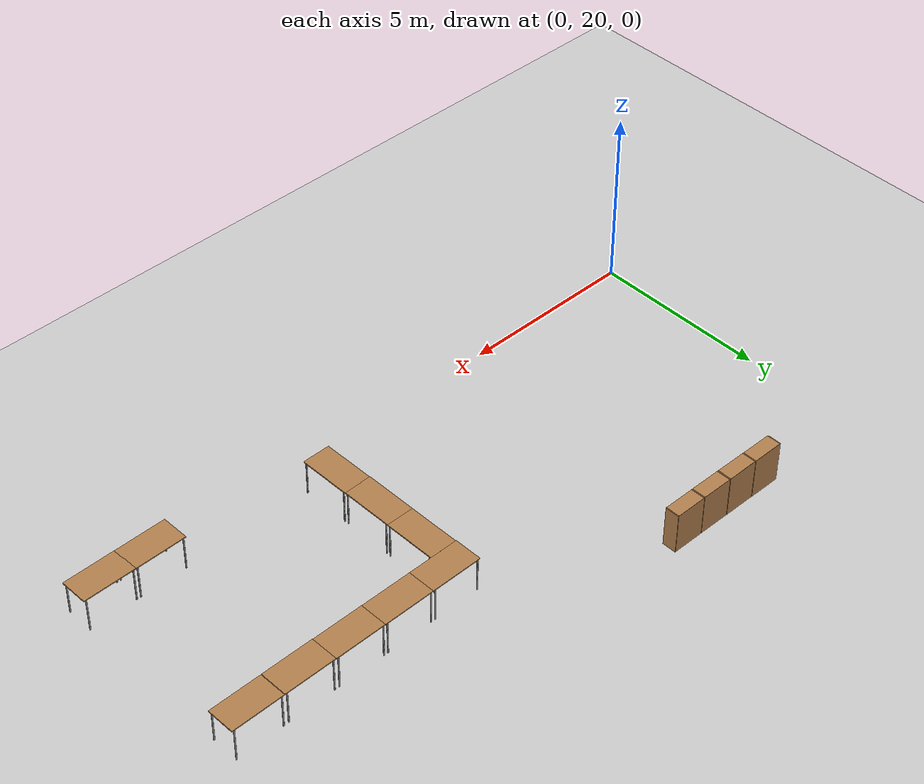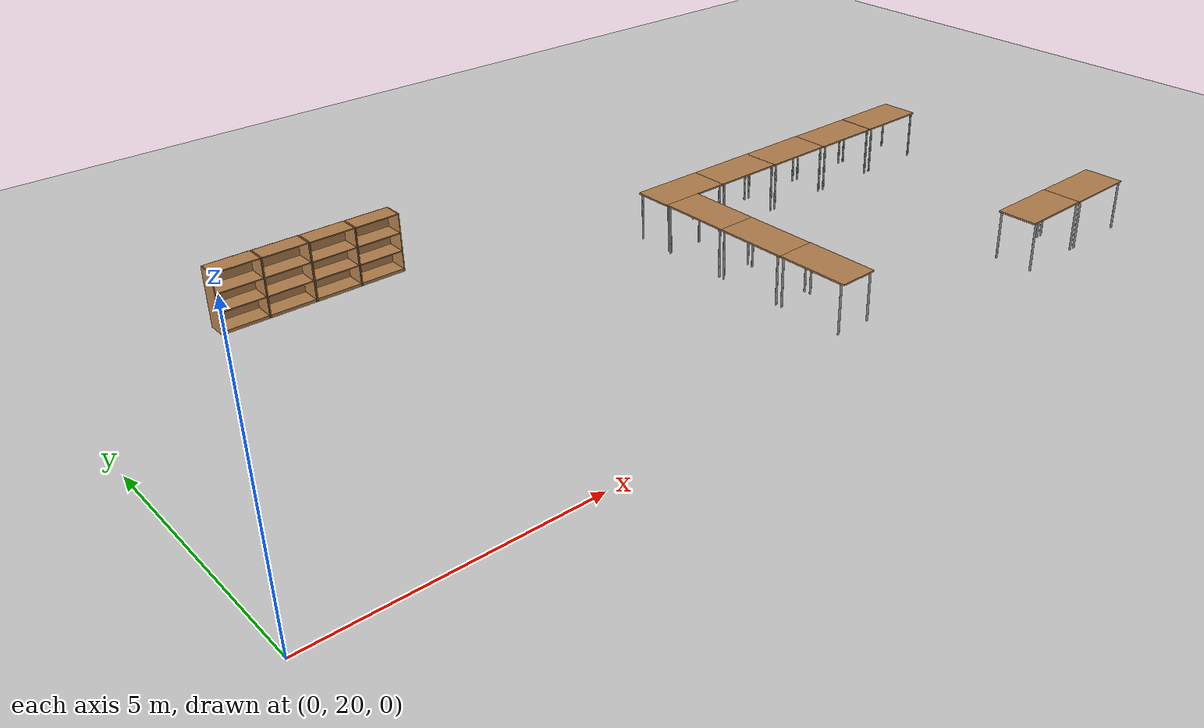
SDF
<sdf version="1.7">
 <world name="default">
  <include><uri>model://ground_plane</uri></include>
  <model name="table_clone_0_clone_0_clone_7">
   <static>1</static>
   <link name="link">
    <collision name="surface">
     <pose>0 0 1 0 -0 0</pose>
     <geometry><box><size>1.5 0.8 0.03</size></box></geometry>
     <surface><friction><ode><mu>0.6</mu><mu2>0.6</mu2></ode></friction></surface>
    </collision>
    <visual name="visual1">
     <pose>0 0 1 0 -0 0</pose>
     <geometry><box><size>1.5 0.8 0.03</size></box></geometry>
     <material>
      <script><uri>file://media/materials/scripts/gazebo.material</uri><name>Gazebo/Wood</name></script>
     </material>
    </visual>
    <collision name="front_left_leg">
     <pose>0.68 0.38 0.5 0 -0 0</pose>
     <geometry><cylinder><radius>0.02</radius><length>1</length></cylinder></geometry>
    </collision>
    <visual name="front_left_leg">
     <pose>0.68 0.38 0.5 0 -0 0</pose>
     <geometry><cylinder><radius>0.02</radius><length>1</length></cylinder></geometry>
     <material>
      <script><uri>file://media/materials/scripts/gazebo.material</uri><name>Gazebo/Grey</name></script>
     </material>
    </visual>
    <collision name="front_right_leg">
     <pose>0.68 -0.38 0.5 0 -0 0</pose>
     <geometry><cylinder><radius>0.02</radius><length>1</length></cylinder></geometry>
    </collision>
    <visual name="front_right_leg">
     <pose>0.68 -0.38 0.5 0 -0 0</pose>
     <geometry><cylinder><radius>0.02</radius><length>1</length></cylinder></geometry>
     <material>
      <script><uri>file://media/materials/scripts/gazebo.material</uri><name>Gazebo/Grey</name></script>
     </material>
    </visual>
    <collision name="back_right_leg">
     <pose>-0.68 -0.38 0.5 0 -0 0</pose>
     <geometry><cylinder><radius>0.02</radius><length>1</length></cylinder></geometry>
    </collision>
    <visual name="back_right_leg">
     <pose>-0.68 -0.38 0.5 0 -0 0</pose>
     <geometry><cylinder><radius>0.02</radius><length>1</length></cylinder></geometry>
     <material>
      <script><uri>file://media/materials/scripts/gazebo.material</uri><name>Gazebo/Grey</name></script>
     </material>
    </visual>
    <collision name="back_left_leg">
     <pose>-0.68 0.38 0.5 0 -0 0</pose>
     <geometry><cylinder><radius>0.02</radius><length>1</length></cylinder></geometry>
    </collision>
    <visual name="back_left_leg">
     <pose>-0.68 0.38 0.5 0 -0 0</pose>
     <geometry><cylinder><radius>0.02</radius><length>1</length></cylinder></geometry>
     <material>
      <script><uri>file://media/materials/scripts/gazebo.material</uri><name>Gazebo/Grey</name></script>
     </material>
    </visual>
   </link>
   <pose>11.2393 21.4927 0 0 -0 1.57868</pose>
  </model>
  <model name="table_clone_0_clone_0_clone_8">
   <static>1</static>
   <link name="link">
    <collision name="surface">
     <pose>0 0 1 0 -0 0</pose>
     <geometry><box><size>1.5 0.8 0.03</size></box></geometry>
     <surface><friction><ode><mu>0.6</mu><mu2>0.6</mu2></ode></friction></surface>
    </collision>
    <visual name="visual1">
     <pose>0 0 1 0 -0 0</pose>
     <geometry><box><size>1.5 0.8 0.03</size></box></geometry>
     <material>
      <script><uri>file://media/materials/scripts/gazebo.material</uri><name>Gazebo/Wood</name></script>
     </material>
    </visual>
    <collision name="front_left_leg">
     <pose>0.68 0.38 0.5 0 -0 0</pose>
     <geometry><cylinder><radius>0.02</radius><length>1</length></cylinder></geometry>
    </collision>
    <visual name="front_left_leg">
     <pose>0.68 0.38 0.5 0 -0 0</pose>
     <geometry><cylinder><radius>0.02</radius><length>1</length></cylinder></geometry>
     <material>
      <script><uri>file://media/materials/scripts/gazebo.material</uri><name>Gazebo/Grey</name></script>
     </material>
    </visual>
    <collision name="front_right_leg">
     <pose>0.68 -0.38 0.5 0 -0 0</pose>
     <geometry><cylinder><radius>0.02</radius><length>1</length></cylinder></geometry>
    </collision>
    <visual name="front_right_leg">
     <pose>0.68 -0.38 0.5 0 -0 0</pose>
     <geometry><cylinder><radius>0.02</radius><length>1</length></cylinder></geometry>
     <material>
      <script><uri>file://media/materials/scripts/gazebo.material</uri><name>Gazebo/Grey</name></script>
     </material>
    </visual>
    <collision name="back_right_leg">
     <pose>-0.68 -0.38 0.5 0 -0 0</pose>
     <geometry><cylinder><radius>0.02</radius><length>1</length></cylinder></geometry>
    </collision>
    <visual name="back_right_leg">
     <pose>-0.68 -0.38 0.5 0 -0 0</pose>
     <geometry><cylinder><radius>0.02</radius><length>1</length></cylinder></geometry>
     <material>
      <script><uri>file://media/materials/scripts/gazebo.material</uri><name>Gazebo/Grey</name></script>
     </material>
    </visual>
    <collision name="back_left_leg">
     <pose>-0.68 0.38 0.5 0 -0 0</pose>
     <geometry><cylinder><radius>0.02</radius><length>1</length></cylinder></geometry>
    </collision>
    <visual name="back_left_leg">
     <pose>-0.68 0.38 0.5 0 -0 0</pose>
     <geometry><cylinder><radius>0.02</radius><length>1</length></cylinder></geometry>
     <material>
      <script><uri>file://media/materials/scripts/gazebo.material</uri><name>Gazebo/Grey</name></script>
     </material>
    </visual>
   </link>
   <pose>11.2178 22.9805 0 0 -0 1.57868</pose>
  </model>
  <model name="table_clone_0_clone_0_clone_9">
   <static>1</static>
   <link name="link">
    <collision name="surface">
     <pose>0 0 1 0 -0 0</pose>
     <geometry><box><size>1.5 0.8 0.03</size></box></geometry>
     <surface><friction><ode><mu>0.6</mu><mu2>0.6</mu2></ode></friction></surface>
    </collision>
    <visual name="visual1">
     <pose>0 0 1 0 -0 0</pose>
     <geometry><box><size>1.5 0.8 0.03</size></box></geometry>
     <material>
      <script><uri>file://media/materials/scripts/gazebo.material</uri><name>Gazebo/Wood</name></script>
     </material>
    </visual>
    <collision name="front_left_leg">
     <pose>0.68 0.38 0.5 0 -0 0</pose>
     <geometry><cylinder><radius>0.02</radius><length>1</length></cylinder></geometry>
    </collision>
    <visual name="front_left_leg">
     <pose>0.68 0.38 0.5 0 -0 0</pose>
     <geometry><cylinder><radius>0.02</radius><length>1</length></cylinder></geometry>
     <material>
      <script><uri>file://media/materials/scripts/gazebo.material</uri><name>Gazebo/Grey</name></script>
     </material>
    </visual>
    <collision name="front_right_leg">
     <pose>0.68 -0.38 0.5 0 -0 0</pose>
     <geometry><cylinder><radius>0.02</radius><length>1</length></cylinder></geometry>
    </collision>
    <visual name="front_right_leg">
     <pose>0.68 -0.38 0.5 0 -0 0</pose>
     <geometry><cylinder><radius>0.02</radius><length>1</length></cylinder></geometry>
     <material>
      <script><uri>file://media/materials/scripts/gazebo.material</uri><name>Gazebo/Grey</name></script>
     </material>
    </visual>
    <collision name="back_right_leg">
     <pose>-0.68 -0.38 0.5 0 -0 0</pose>
     <geometry><cylinder><radius>0.02</radius><length>1</length></cylinder></geometry>
    </collision>
    <visual name="back_right_leg">
     <pose>-0.68 -0.38 0.5 0 -0 0</pose>
     <geometry><cylinder><radius>0.02</radius><length>1</length></cylinder></geometry>
     <material>
      <script><uri>file://media/materials/scripts/gazebo.material</uri><name>Gazebo/Grey</name></script>
     </material>
    </visual>
    <collision name="back_left_leg">
     <pose>-0.68 0.38 0.5 0 -0 0</pose>
     <geometry><cylinder><radius>0.02</radius><length>1</length></cylinder></geometry>
    </collision>
    <visual name="back_left_leg">
     <pose>-0.68 0.38 0.5 0 -0 0</pose>
     <geometry><cylinder><radius>0.02</radius><length>1</length></cylinder></geometry>
     <material>
      <script><uri>file://media/materials/scripts/gazebo.material</uri><name>Gazebo/Grey</name></script>
     </material>
    </visual>
   </link>
   <pose>11.2091 24.4647 0 0 -0 1.57868</pose>
  </model>
  <model name="table_clone_0_clone_0_clone_10">
   <static>1</static>
   <link name="link">
    <collision name="surface">
     <pose>0 0 1 0 -0 0</pose>
     <geometry><box><size>1.5 0.8 0.03</size></box></geometry>
     <surface><friction><ode><mu>0.6</mu><mu2>0.6</mu2></ode></friction></surface>
    </collision>
    <visual name="visual1">
     <pose>0 0 1 0 -0 0</pose>
     <geometry><box><size>1.5 0.8 0.03</size></box></geometry>
     <material>
      <script><uri>file://media/materials/scripts/gazebo.material</uri><name>Gazebo/Wood</name></script>
     </material>
    </visual>
    <collision name="front_left_leg">
     <pose>0.68 0.38 0.5 0 -0 0</pose>
     <geometry><cylinder><radius>0.02</radius><length>1</length></cylinder></geometry>
    </collision>
    <visual name="front_left_leg">
     <pose>0.68 0.38 0.5 0 -0 0</pose>
     <geometry><cylinder><radius>0.02</radius><length>1</length></cylinder></geometry>
     <material>
      <script><uri>file://media/materials/scripts/gazebo.material</uri><name>Gazebo/Grey</name></script>
     </material>
    </visual>
    <collision name="front_right_leg">
     <pose>0.68 -0.38 0.5 0 -0 0</pose>
     <geometry><cylinder><radius>0.02</radius><length>1</length></cylinder></geometry>
    </collision>
    <visual name="front_right_leg">
     <pose>0.68 -0.38 0.5 0 -0 0</pose>
     <geometry><cylinder><radius>0.02</radius><length>1</length></cylinder></geometry>
     <material>
      <script><uri>file://media/materials/scripts/gazebo.material</uri><name>Gazebo/Grey</name></script>
     </material>
    </visual>
    <collision name="back_right_leg">
     <pose>-0.68 -0.38 0.5 0 -0 0</pose>
     <geometry><cylinder><radius>0.02</radius><length>1</length></cylinder></geometry>
    </collision>
    <visual name="back_right_leg">
     <pose>-0.68 -0.38 0.5 0 -0 0</pose>
     <geometry><cylinder><radius>0.02</radius><length>1</length></cylinder></geometry>
     <material>
      <script><uri>file://media/materials/scripts/gazebo.material</uri><name>Gazebo/Grey</name></script>
     </material>
    </visual>
    <collision name="back_left_leg">
     <pose>-0.68 0.38 0.5 0 -0 0</pose>
     <geometry><cylinder><radius>0.02</radius><length>1</length></cylinder></geometry>
    </collision>
    <visual name="back_left_leg">
     <pose>-0.68 0.38 0.5 0 -0 0</pose>
     <geometry><cylinder><radius>0.02</radius><length>1</length></cylinder></geometry>
     <material>
      <script><uri>file://media/materials/scripts/gazebo.material</uri><name>Gazebo/Grey</name></script>
     </material>
    </visual>
   </link>
   <pose>17.5434 20.4071 0 0 -0 0.009638</pose>
  </model>
  <model name="table_clone_0_clone_0_clone_10_clone">
   <static>1</static>
   <link name="link">
    <collision name="surface">
     <pose>0 0 1 0 -0 0</pose>
     <geometry><box><size>1.5 0.8 0.03</size></box></geometry>
     <surface><friction><ode><mu>0.6</mu><mu2>0.6</mu2></ode></friction></surface>
    </collision>
    <visual name="visual1">
     <pose>0 0 1 0 -0 0</pose>
     <geometry><box><size>1.5 0.8 0.03</size></box></geometry>
     <material>
      <script><uri>file://media/materials/scripts/gazebo.material</uri><name>Gazebo/Wood</name></script>
     </material>
    </visual>
    <collision name="front_left_leg">
     <pose>0.68 0.38 0.5 0 -0 0</pose>
     <geometry><cylinder><radius>0.02</radius><length>1</length></cylinder></geometry>
    </collision>
    <visual name="front_left_leg">
     <pose>0.68 0.38 0.5 0 -0 0</pose>
     <geometry><cylinder><radius>0.02</radius><length>1</length></cylinder></geometry>
     <material>
      <script><uri>file://media/materials/scripts/gazebo.material</uri><name>Gazebo/Grey</name></script>
     </material>
    </visual>
    <collision name="front_right_leg">
     <pose>0.68 -0.38 0.5 0 -0 0</pose>
     <geometry><cylinder><radius>0.02</radius><length>1</length></cylinder></geometry>
    </collision>
    <visual name="front_right_leg">
     <pose>0.68 -0.38 0.5 0 -0 0</pose>
     <geometry><cylinder><radius>0.02</radius><length>1</length></cylinder></geometry>
     <material>
      <script><uri>file://media/materials/scripts/gazebo.material</uri><name>Gazebo/Grey</name></script>
     </material>
    </visual>
    <collision name="back_right_leg">
     <pose>-0.68 -0.38 0.5 0 -0 0</pose>
     <geometry><cylinder><radius>0.02</radius><length>1</length></cylinder></geometry>
    </collision>
    <visual name="back_right_leg">
     <pose>-0.68 -0.38 0.5 0 -0 0</pose>
     <geometry><cylinder><radius>0.02</radius><length>1</length></cylinder></geometry>
     <material>
      <script><uri>file://media/materials/scripts/gazebo.material</uri><name>Gazebo/Grey</name></script>
     </material>
    </visual>
    <collision name="back_left_leg">
     <pose>-0.68 0.38 0.5 0 -0 0</pose>
     <geometry><cylinder><radius>0.02</radius><length>1</length></cylinder></geometry>
    </collision>
    <visual name="back_left_leg">
     <pose>-0.68 0.38 0.5 0 -0 0</pose>
     <geometry><cylinder><radius>0.02</radius><length>1</length></cylinder></geometry>
     <material>
      <script><uri>file://media/materials/scripts/gazebo.material</uri><name>Gazebo/Grey</name></script>
     </material>
    </visual>
   </link>
   <pose>16.0623 20.3957 0 0 -0 0.009638</pose>
  </model>
  <model name="table_clone_0_clone_0_clone_10_clone_3">
   <static>1</static>
   <link name="link">
    <collision name="surface">
     <pose>0 0 1 0 -0 0</pose>
     <geometry><box><size>1.5 0.8 0.03</size></box></geometry>
     <surface><friction><ode><mu>0.6</mu><mu2>0.6</mu2></ode></friction></surface>
    </collision>
    <visual name="visual1">
     <pose>0 0 1 0 -0 0</pose>
     <geometry><box><size>1.5 0.8 0.03</size></box></geometry>
     <material>
      <script><uri>file://media/materials/scripts/gazebo.material</uri><name>Gazebo/Wood</name></script>
     </material>
    </visual>
    <collision name="front_left_leg">
     <pose>0.68 0.38 0.5 0 -0 0</pose>
     <geometry><cylinder><radius>0.02</radius><length>1</length></cylinder></geometry>
    </collision>
    <visual name="front_left_leg">
     <pose>0.68 0.38 0.5 0 -0 0</pose>
     <geometry><cylinder><radius>0.02</radius><length>1</length></cylinder></geometry>
     <material>
      <script><uri>file://media/materials/scripts/gazebo.material</uri><name>Gazebo/Grey</name></script>
     </material>
    </visual>
    <collision name="front_right_leg">
     <pose>0.68 -0.38 0.5 0 -0 0</pose>
     <geometry><cylinder><radius>0.02</radius><length>1</length></cylinder></geometry>
    </collision>
    <visual name="front_right_leg">
     <pose>0.68 -0.38 0.5 0 -0 0</pose>
     <geometry><cylinder><radius>0.02</radius><length>1</length></cylinder></geometry>
     <material>
      <script><uri>file://media/materials/scripts/gazebo.material</uri><name>Gazebo/Grey</name></script>
     </material>
    </visual>
    <collision name="back_right_leg">
     <pose>-0.68 -0.38 0.5 0 -0 0</pose>
     <geometry><cylinder><radius>0.02</radius><length>1</length></cylinder></geometry>
    </collision>
    <visual name="back_right_leg">
     <pose>-0.68 -0.38 0.5 0 -0 0</pose>
     <geometry><cylinder><radius>0.02</radius><length>1</length></cylinder></geometry>
     <material>
      <script><uri>file://media/materials/scripts/gazebo.material</uri><name>Gazebo/Grey</name></script>
     </material>
    </visual>
    <collision name="back_left_leg">
     <pose>-0.68 0.38 0.5 0 -0 0</pose>
     <geometry><cylinder><radius>0.02</radius><length>1</length></cylinder></geometry>
    </collision>
    <visual name="back_left_leg">
     <pose>-0.68 0.38 0.5 0 -0 0</pose>
     <geometry><cylinder><radius>0.02</radius><length>1</length></cylinder></geometry>
     <material>
      <script><uri>file://media/materials/scripts/gazebo.material</uri><name>Gazebo/Grey</name></script>
     </material>
    </visual>
   </link>
   <pose>17.5095 25.6625 0 0 -0 0.009638</pose>
  </model>
  <model name="table_clone_0_clone_0_clone_10_clone_4">
   <static>1</static>
   <link name="link">
    <collision name="surface">
     <pose>0 0 1 0 -0 0</pose>
     <geometry><box><size>1.5 0.8 0.03</size></box></geometry>
     <surface><friction><ode><mu>0.6</mu><mu2>0.6</mu2></ode></friction></surface>
    </collision>
    <visual name="visual1">
     <pose>0 0 1 0 -0 0</pose>
     <geometry><box><size>1.5 0.8 0.03</size></box></geometry>
     <material>
      <script><uri>file://media/materials/scripts/gazebo.material</uri><name>Gazebo/Wood</name></script>
     </material>
    </visual>
    <collision name="front_left_leg">
     <pose>0.68 0.38 0.5 0 -0 0</pose>
     <geometry><cylinder><radius>0.02</radius><length>1</length></cylinder></geometry>
    </collision>
    <visual name="front_left_leg">
     <pose>0.68 0.38 0.5 0 -0 0</pose>
     <geometry><cylinder><radius>0.02</radius><length>1</length></cylinder></geometry>
     <material>
      <script><uri>file://media/materials/scripts/gazebo.material</uri><name>Gazebo/Grey</name></script>
     </material>
    </visual>
    <collision name="front_right_leg">
     <pose>0.68 -0.38 0.5 0 -0 0</pose>
     <geometry><cylinder><radius>0.02</radius><length>1</length></cylinder></geometry>
    </collision>
    <visual name="front_right_leg">
     <pose>0.68 -0.38 0.5 0 -0 0</pose>
     <geometry><cylinder><radius>0.02</radius><length>1</length></cylinder></geometry>
     <material>
      <script><uri>file://media/materials/scripts/gazebo.material</uri><name>Gazebo/Grey</name></script>
     </material>
    </visual>
    <collision name="back_right_leg">
     <pose>-0.68 -0.38 0.5 0 -0 0</pose>
     <geometry><cylinder><radius>0.02</radius><length>1</length></cylinder></geometry>
    </collision>
    <visual name="back_right_leg">
     <pose>-0.68 -0.38 0.5 0 -0 0</pose>
     <geometry><cylinder><radius>0.02</radius><length>1</length></cylinder></geometry>
     <material>
      <script><uri>file://media/materials/scripts/gazebo.material</uri><name>Gazebo/Grey</name></script>
     </material>
    </visual>
    <collision name="back_left_leg">
     <pose>-0.68 0.38 0.5 0 -0 0</pose>
     <geometry><cylinder><radius>0.02</radius><length>1</length></cylinder></geometry>
    </collision>
    <visual name="back_left_leg">
     <pose>-0.68 0.38 0.5 0 -0 0</pose>
     <geometry><cylinder><radius>0.02</radius><length>1</length></cylinder></geometry>
     <material>
      <script><uri>file://media/materials/scripts/gazebo.material</uri><name>Gazebo/Grey</name></script>
     </material>
    </visual>
   </link>
   <pose>15.998 25.6463 0 0 -0 0.009638</pose>
  </model>
  <model name="table_clone_0_clone_0_clone_10_clone_5">
   <static>1</static>
   <link name="link">
    <collision name="surface">
     <pose>0 0 1 0 -0 0</pose>
     <geometry><box><size>1.5 0.8 0.03</size></box></geometry>
     <surface><friction><ode><mu>0.6</mu><mu2>0.6</mu2></ode></friction></surface>
    </collision>
    <visual name="visual1">
     <pose>0 0 1 0 -0 0</pose>
     <geometry><box><size>1.5 0.8 0.03</size></box></geometry>
     <material>
      <script><uri>file://media/materials/scripts/gazebo.material</uri><name>Gazebo/Wood</name></script>
     </material>
    </visual>
    <collision name="front_left_leg">
     <pose>0.68 0.38 0.5 0 -0 0</pose>
     <geometry><cylinder><radius>0.02</radius><length>1</length></cylinder></geometry>
    </collision>
    <visual name="front_left_leg">
     <pose>0.68 0.38 0.5 0 -0 0</pose>
     <geometry><cylinder><radius>0.02</radius><length>1</length></cylinder></geometry>
     <material>
      <script><uri>file://media/materials/scripts/gazebo.material</uri><name>Gazebo/Grey</name></script>
     </material>
    </visual>
    <collision name="front_right_leg">
     <pose>0.68 -0.38 0.5 0 -0 0</pose>
     <geometry><cylinder><radius>0.02</radius><length>1</length></cylinder></geometry>
    </collision>
    <visual name="front_right_leg">
     <pose>0.68 -0.38 0.5 0 -0 0</pose>
     <geometry><cylinder><radius>0.02</radius><length>1</length></cylinder></geometry>
     <material>
      <script><uri>file://media/materials/scripts/gazebo.material</uri><name>Gazebo/Grey</name></script>
     </material>
    </visual>
    <collision name="back_right_leg">
     <pose>-0.68 -0.38 0.5 0 -0 0</pose>
     <geometry><cylinder><radius>0.02</radius><length>1</length></cylinder></geometry>
    </collision>
    <visual name="back_right_leg">
     <pose>-0.68 -0.38 0.5 0 -0 0</pose>
     <geometry><cylinder><radius>0.02</radius><length>1</length></cylinder></geometry>
     <material>
      <script><uri>file://media/materials/scripts/gazebo.material</uri><name>Gazebo/Grey</name></script>
     </material>
    </visual>
    <collision name="back_left_leg">
     <pose>-0.68 0.38 0.5 0 -0 0</pose>
     <geometry><cylinder><radius>0.02</radius><length>1</length></cylinder></geometry>
    </collision>
    <visual name="back_left_leg">
     <pose>-0.68 0.38 0.5 0 -0 0</pose>
     <geometry><cylinder><radius>0.02</radius><length>1</length></cylinder></geometry>
     <material>
      <script><uri>file://media/materials/scripts/gazebo.material</uri><name>Gazebo/Grey</name></script>
     </material>
    </visual>
   </link>
   <pose>14.4996 25.6409 0 0 -0 0.009638</pose>
  </model>
  <model name="table_clone_0_clone_0_clone_10_clone_6">
   <static>1</static>
   <link name="link">
    <collision name="surface">
     <pose>0 0 1 0 -0 0</pose>
     <geometry><box><size>1.5 0.8 0.03</size></box></geometry>
     <surface><friction><ode><mu>0.6</mu><mu2>0.6</mu2></ode></friction></surface>
    </collision>
    <visual name="visual1">
     <pose>0 0 1 0 -0 0</pose>
     <geometry><box><size>1.5 0.8 0.03</size></box></geometry>
     <material>
      <script><uri>file://media/materials/scripts/gazebo.material</uri><name>Gazebo/Wood</name></script>
     </material>
    </visual>
    <collision name="front_left_leg">
     <pose>0.68 0.38 0.5 0 -0 0</pose>
     <geometry><cylinder><radius>0.02</radius><length>1</length></cylinder></geometry>
    </collision>
    <visual name="front_left_leg">
     <pose>0.68 0.38 0.5 0 -0 0</pose>
     <geometry><cylinder><radius>0.02</radius><length>1</length></cylinder></geometry>
     <material>
      <script><uri>file://media/materials/scripts/gazebo.material</uri><name>Gazebo/Grey</name></script>
     </material>
    </visual>
    <collision name="front_right_leg">
     <pose>0.68 -0.38 0.5 0 -0 0</pose>
     <geometry><cylinder><radius>0.02</radius><length>1</length></cylinder></geometry>
    </collision>
    <visual name="front_right_leg">
     <pose>0.68 -0.38 0.5 0 -0 0</pose>
     <geometry><cylinder><radius>0.02</radius><length>1</length></cylinder></geometry>
     <material>
      <script><uri>file://media/materials/scripts/gazebo.material</uri><name>Gazebo/Grey</name></script>
     </material>
    </visual>
    <collision name="back_right_leg">
     <pose>-0.68 -0.38 0.5 0 -0 0</pose>
     <geometry><cylinder><radius>0.02</radius><length>1</length></cylinder></geometry>
    </collision>
    <visual name="back_right_leg">
     <pose>-0.68 -0.38 0.5 0 -0 0</pose>
     <geometry><cylinder><radius>0.02</radius><length>1</length></cylinder></geometry>
     <material>
      <script><uri>file://media/materials/scripts/gazebo.material</uri><name>Gazebo/Grey</name></script>
     </material>
    </visual>
    <collision name="back_left_leg">
     <pose>-0.68 0.38 0.5 0 -0 0</pose>
     <geometry><cylinder><radius>0.02</radius><length>1</length></cylinder></geometry>
    </collision>
    <visual name="back_left_leg">
     <pose>-0.68 0.38 0.5 0 -0 0</pose>
     <geometry><cylinder><radius>0.02</radius><length>1</length></cylinder></geometry>
     <material>
      <script><uri>file://media/materials/scripts/gazebo.material</uri><name>Gazebo/Grey</name></script>
     </material>
    </visual>
   </link>
   <pose>13.0207 25.6312 0 0 -0 0.009638</pose>
  </model>
  <model name="table_clone_0_clone_0_clone_10_clone_7">
   <static>1</static>
   <link name="link">
    <collision name="surface">
     <pose>0 0 1 0 -0 0</pose>
     <geometry><box><size>1.5 0.8 0.03</size></box></geometry>
     <surface><friction><ode><mu>0.6</mu><mu2>0.6</mu2></ode></friction></surface>
    </collision>
    <visual name="visual1">
     <pose>0 0 1 0 -0 0</pose>
     <geometry><box><size>1.5 0.8 0.03</size></box></geometry>
     <material>
      <script><uri>file://media/materials/scripts/gazebo.material</uri><name>Gazebo/Wood</name></script>
     </material>
    </visual>
    <collision name="front_left_leg">
     <pose>0.68 0.38 0.5 0 -0 0</pose>
     <geometry><cylinder><radius>0.02</radius><length>1</length></cylinder></geometry>
    </collision>
    <visual name="front_left_leg">
     <pose>0.68 0.38 0.5 0 -0 0</pose>
     <geometry><cylinder><radius>0.02</radius><length>1</length></cylinder></geometry>
     <material>
      <script><uri>file://media/materials/scripts/gazebo.material</uri><name>Gazebo/Grey</name></script>
     </material>
    </visual>
    <collision name="front_right_leg">
     <pose>0.68 -0.38 0.5 0 -0 0</pose>
     <geometry><cylinder><radius>0.02</radius><length>1</length></cylinder></geometry>
    </collision>
    <visual name="front_right_leg">
     <pose>0.68 -0.38 0.5 0 -0 0</pose>
     <geometry><cylinder><radius>0.02</radius><length>1</length></cylinder></geometry>
     <material>
      <script><uri>file://media/materials/scripts/gazebo.material</uri><name>Gazebo/Grey</name></script>
     </material>
    </visual>
    <collision name="back_right_leg">
     <pose>-0.68 -0.38 0.5 0 -0 0</pose>
     <geometry><cylinder><radius>0.02</radius><length>1</length></cylinder></geometry>
    </collision>
    <visual name="back_right_leg">
     <pose>-0.68 -0.38 0.5 0 -0 0</pose>
     <geometry><cylinder><radius>0.02</radius><length>1</length></cylinder></geometry>
     <material>
      <script><uri>file://media/materials/scripts/gazebo.material</uri><name>Gazebo/Grey</name></script>
     </material>
    </visual>
    <collision name="back_left_leg">
     <pose>-0.68 0.38 0.5 0 -0 0</pose>
     <geometry><cylinder><radius>0.02</radius><length>1</length></cylinder></geometry>
    </collision>
    <visual name="back_left_leg">
     <pose>-0.68 0.38 0.5 0 -0 0</pose>
     <geometry><cylinder><radius>0.02</radius><length>1</length></cylinder></geometry>
     <material>
      <script><uri>file://media/materials/scripts/gazebo.material</uri><name>Gazebo/Grey</name></script>
     </material>
    </visual>
   </link>
   <pose>11.5338 25.6181 0 0 -0 0.009638</pose>
  </model>
  <model name="bookshelf_clone_1_clone">
   <static>1</static>
   <link name="link">
    <inertial><mass>1</mass></inertial>
    <collision name="back">
     <pose>0 0.005 0.6 0 -0 0</pose>
     <geometry><box><size>0.9 0.01 1.2</size></box></geometry>
    </collision>
    <visual name="visual1">
     <pose>0 0.005 0.6 0 -0 0</pose>
     <geometry><box><size>0.9 0.01 1.2</size></box></geometry>
     <material>
      <script><uri>file://media/materials/scripts/gazebo.material</uri><name>Gazebo/Wood</name></script>
     </material>
    </visual>
    <collision name="left_side">
     <pose>0.45 -0.195 0.6 0 -0 0</pose>
     <geometry><box><size>0.02 0.4 1.2</size></box></geometry>
    </collision>
    <visual name="visual2">
     <pose>0.45 -0.195 0.6 0 -0 0</pose>
     <geometry><box><size>0.02 0.4 1.2</size></box></geometry>
     <material>
      <script><uri>file://media/materials/scripts/gazebo.material</uri><name>Gazebo/Wood</name></script>
     </material>
    </visual>
    <collision name="right_side">
     <pose>-0.45 -0.195 0.6 0 -0 0</pose>
     <geometry><box><size>0.02 0.4 1.2</size></box></geometry>
    </collision>
    <visual name="visual3">
     <pose>-0.45 -0.195 0.6 0 -0 0</pose>
     <geometry><box><size>0.02 0.4 1.2</size></box></geometry>
     <material>
      <script><uri>file://media/materials/scripts/gazebo.material</uri><name>Gazebo/Wood</name></script>
     </material>
    </visual>
    <collision name="bottom">
     <pose>0 -0.195 0.03 0 -0 0</pose>
     <geometry><box><size>0.88 0.4 0.06</size></box></geometry>
    </collision>
    <visual name="visual4">
     <pose>0 -0.195 0.03 0 -0 0</pose>
     <geometry><box><size>0.88 0.4 0.06</size></box></geometry>
     <material>
      <script><uri>file://media/materials/scripts/gazebo.material</uri><name>Gazebo/Wood</name></script>
     </material>
    </visual>
    <collision name="top">
     <pose>0 -0.195 1.19 0 -0 0</pose>
     <geometry><box><size>0.88 0.4 0.02</size></box></geometry>
    </collision>
    <visual name="visual5">
     <pose>0 -0.195 1.19 0 -0 0</pose>
     <geometry><box><size>0.88 0.4 0.02</size></box></geometry>
     <material>
      <script><uri>file://media/materials/scripts/gazebo.material</uri><name>Gazebo/Wood</name></script>
     </material>
    </visual>
    <collision name="low_shelf">
     <pose>0 -0.195 0.43 0 -0 0</pose>
     <geometry><box><size>0.88 0.4 0.02</size></box></geometry>
    </collision>
    <visual name="visual6">
     <pose>0 -0.195 0.43 0 -0 0</pose>
     <geometry><box><size>0.88 0.4 0.02</size></box></geometry>
     <material>
      <script><uri>file://media/materials/scripts/gazebo.material</uri><name>Gazebo/Wood</name></script>
     </material>
    </visual>
    <collision name="high_shelf">
     <pose>0 -0.195 0.8 0 -0 0</pose>
     <geometry><box><size>0.88 0.4 0.02</size></box></geometry>
    </collision>
    <visual name="visual7">
     <pose>0 -0.195 0.8 0 -0 0</pose>
     <geometry><box><size>0.88 0.4 0.02</size></box></geometry>
     <material>
      <script><uri>file://media/materials/scripts/gazebo.material</uri><name>Gazebo/Wood</name></script>
     </material>
    </visual>
   </link>
   <pose>3.36103 28.3558 0 0 -0 0</pose>
  </model>
  <model name="bookshelf_clone_1_clone_0">
   <static>1</static>
   <link name="link">
    <inertial><mass>1</mass></inertial>
    <collision name="back">
     <pose>0 0.005 0.6 0 -0 0</pose>
     <geometry><box><size>0.9 0.01 1.2</size></box></geometry>
    </collision>
    <visual name="visual1">
     <pose>0 0.005 0.6 0 -0 0</pose>
     <geometry><box><size>0.9 0.01 1.2</size></box></geometry>
     <material>
      <script><uri>file://media/materials/scripts/gazebo.material</uri><name>Gazebo/Wood</name></script>
     </material>
    </visual>
    <collision name="left_side">
     <pose>0.45 -0.195 0.6 0 -0 0</pose>
     <geometry><box><size>0.02 0.4 1.2</size></box></geometry>
    </collision>
    <visual name="visual2">
     <pose>0.45 -0.195 0.6 0 -0 0</pose>
     <geometry><box><size>0.02 0.4 1.2</size></box></geometry>
     <material>
      <script><uri>file://media/materials/scripts/gazebo.material</uri><name>Gazebo/Wood</name></script>
     </material>
    </visual>
    <collision name="right_side">
     <pose>-0.45 -0.195 0.6 0 -0 0</pose>
     <geometry><box><size>0.02 0.4 1.2</size></box></geometry>
    </collision>
    <visual name="visual3">
     <pose>-0.45 -0.195 0.6 0 -0 0</pose>
     <geometry><box><size>0.02 0.4 1.2</size></box></geometry>
     <material>
      <script><uri>file://media/materials/scripts/gazebo.material</uri><name>Gazebo/Wood</name></script>
     </material>
    </visual>
    <collision name="bottom">
     <pose>0 -0.195 0.03 0 -0 0</pose>
     <geometry><box><size>0.88 0.4 0.06</size></box></geometry>
    </collision>
    <visual name="visual4">
     <pose>0 -0.195 0.03 0 -0 0</pose>
     <geometry><box><size>0.88 0.4 0.06</size></box></geometry>
     <material>
      <script><uri>file://media/materials/scripts/gazebo.material</uri><name>Gazebo/Wood</name></script>
     </material>
    </visual>
    <collision name="top">
     <pose>0 -0.195 1.19 0 -0 0</pose>
     <geometry><box><size>0.88 0.4 0.02</size></box></geometry>
    </collision>
    <visual name="visual5">
     <pose>0 -0.195 1.19 0 -0 0</pose>
     <geometry><box><size>0.88 0.4 0.02</size></box></geometry>
     <material>
      <script><uri>file://media/materials/scripts/gazebo.material</uri><name>Gazebo/Wood</name></script>
     </material>
    </visual>
    <collision name="low_shelf">
     <pose>0 -0.195 0.43 0 -0 0</pose>
     <geometry><box><size>0.88 0.4 0.02</size></box></geometry>
    </collision>
    <visual name="visual6">
     <pose>0 -0.195 0.43 0 -0 0</pose>
     <geometry><box><size>0.88 0.4 0.02</size></box></geometry>
     <material>
      <script><uri>file://media/materials/scripts/gazebo.material</uri><name>Gazebo/Wood</name></script>
     </material>
    </visual>
    <collision name="high_shelf">
     <pose>0 -0.195 0.8 0 -0 0</pose>
     <geometry><box><size>0.88 0.4 0.02</size></box></geometry>
    </collision>
    <visual name="visual7">
     <pose>0 -0.195 0.8 0 -0 0</pose>
     <geometry><box><size>0.88 0.4 0.02</size></box></geometry>
     <material>
      <script><uri>file://media/materials/scripts/gazebo.material</uri><name>Gazebo/Wood</name></script>
     </material>
    </visual>
   </link>
   <pose>4.27446 28.3514 0 0 -0 0</pose>
  </model>
  <model name="bookshelf_clone_1_clone_1">
   <static>1</static>
   <link name="link">
    <inertial><mass>1</mass></inertial>
    <collision name="back">
     <pose>0 0.005 0.6 0 -0 0</pose>
     <geometry><box><size>0.9 0.01 1.2</size></box></geometry>
    </collision>
    <visual name="visual1">
     <pose>0 0.005 0.6 0 -0 0</pose>
     <geometry><box><size>0.9 0.01 1.2</size></box></geometry>
     <material>
      <script><uri>file://media/materials/scripts/gazebo.material</uri><name>Gazebo/Wood</name></script>
     </material>
    </visual>
    <collision name="left_side">
     <pose>0.45 -0.195 0.6 0 -0 0</pose>
     <geometry><box><size>0.02 0.4 1.2</size></box></geometry>
    </collision>
    <visual name="visual2">
     <pose>0.45 -0.195 0.6 0 -0 0</pose>
     <geometry><box><size>0.02 0.4 1.2</size></box></geometry>
     <material>
      <script><uri>file://media/materials/scripts/gazebo.material</uri><name>Gazebo/Wood</name></script>
     </material>
    </visual>
    <collision name="right_side">
     <pose>-0.45 -0.195 0.6 0 -0 0</pose>
     <geometry><box><size>0.02 0.4 1.2</size></box></geometry>
    </collision>
    <visual name="visual3">
     <pose>-0.45 -0.195 0.6 0 -0 0</pose>
     <geometry><box><size>0.02 0.4 1.2</size></box></geometry>
     <material>
      <script><uri>file://media/materials/scripts/gazebo.material</uri><name>Gazebo/Wood</name></script>
     </material>
    </visual>
    <collision name="bottom">
     <pose>0 -0.195 0.03 0 -0 0</pose>
     <geometry><box><size>0.88 0.4 0.06</size></box></geometry>
    </collision>
    <visual name="visual4">
     <pose>0 -0.195 0.03 0 -0 0</pose>
     <geometry><box><size>0.88 0.4 0.06</size></box></geometry>
     <material>
      <script><uri>file://media/materials/scripts/gazebo.material</uri><name>Gazebo/Wood</name></script>
     </material>
    </visual>
    <collision name="top">
     <pose>0 -0.195 1.19 0 -0 0</pose>
     <geometry><box><size>0.88 0.4 0.02</size></box></geometry>
    </collision>
    <visual name="visual5">
     <pose>0 -0.195 1.19 0 -0 0</pose>
     <geometry><box><size>0.88 0.4 0.02</size></box></geometry>
     <material>
      <script><uri>file://media/materials/scripts/gazebo.material</uri><name>Gazebo/Wood</name></script>
     </material>
    </visual>
    <collision name="low_shelf">
     <pose>0 -0.195 0.43 0 -0 0</pose>
     <geometry><box><size>0.88 0.4 0.02</size></box></geometry>
    </collision>
    <visual name="visual6">
     <pose>0 -0.195 0.43 0 -0 0</pose>
     <geometry><box><size>0.88 0.4 0.02</size></box></geometry>
     <material>
      <script><uri>file://media/materials/scripts/gazebo.material</uri><name>Gazebo/Wood</name></script>
     </material>
    </visual>
    <collision name="high_shelf">
     <pose>0 -0.195 0.8 0 -0 0</pose>
     <geometry><box><size>0.88 0.4 0.02</size></box></geometry>
    </collision>
    <visual name="visual7">
     <pose>0 -0.195 0.8 0 -0 0</pose>
     <geometry><box><size>0.88 0.4 0.02</size></box></geometry>
     <material>
      <script><uri>file://media/materials/scripts/gazebo.material</uri><name>Gazebo/Wood</name></script>
     </material>
    </visual>
   </link>
   <pose>5.19313 28.3479 0 0 -0 0</pose>
  </model>
  <model name="bookshelf_clone_1_clone_2">
   <static>1</static>
   <link name="link">
    <inertial><mass>1</mass></inertial>
    <collision name="back">
     <pose>0 0.005 0.6 0 -0 0</pose>
     <geometry><box><size>0.9 0.01 1.2</size></box></geometry>
    </collision>
    <visual name="visual1">
     <pose>0 0.005 0.6 0 -0 0</pose>
     <geometry><box><size>0.9 0.01 1.2</size></box></geometry>
     <material>
      <script><uri>file://media/materials/scripts/gazebo.material</uri><name>Gazebo/Wood</name></script>
     </material>
    </visual>
    <collision name="left_side">
     <pose>0.45 -0.195 0.6 0 -0 0</pose>
     <geometry><box><size>0.02 0.4 1.2</size></box></geometry>
    </collision>
    <visual name="visual2">
     <pose>0.45 -0.195 0.6 0 -0 0</pose>
     <geometry><box><size>0.02 0.4 1.2</size></box></geometry>
     <material>
      <script><uri>file://media/materials/scripts/gazebo.material</uri><name>Gazebo/Wood</name></script>
     </material>
    </visual>
    <collision name="right_side">
     <pose>-0.45 -0.195 0.6 0 -0 0</pose>
     <geometry><box><size>0.02 0.4 1.2</size></box></geometry>
    </collision>
    <visual name="visual3">
     <pose>-0.45 -0.195 0.6 0 -0 0</pose>
     <geometry><box><size>0.02 0.4 1.2</size></box></geometry>
     <material>
      <script><uri>file://media/materials/scripts/gazebo.material</uri><name>Gazebo/Wood</name></script>
     </material>
    </visual>
    <collision name="bottom">
     <pose>0 -0.195 0.03 0 -0 0</pose>
     <geometry><box><size>0.88 0.4 0.06</size></box></geometry>
    </collision>
    <visual name="visual4">
     <pose>0 -0.195 0.03 0 -0 0</pose>
     <geometry><box><size>0.88 0.4 0.06</size></box></geometry>
     <material>
      <script><uri>file://media/materials/scripts/gazebo.material</uri><name>Gazebo/Wood</name></script>
     </material>
    </visual>
    <collision name="top">
     <pose>0 -0.195 1.19 0 -0 0</pose>
     <geometry><box><size>0.88 0.4 0.02</size></box></geometry>
    </collision>
    <visual name="visual5">
     <pose>0 -0.195 1.19 0 -0 0</pose>
     <geometry><box><size>0.88 0.4 0.02</size></box></geometry>
     <material>
      <script><uri>file://media/materials/scripts/gazebo.material</uri><name>Gazebo/Wood</name></script>
     </material>
    </visual>
    <collision name="low_shelf">
     <pose>0 -0.195 0.43 0 -0 0</pose>
     <geometry><box><size>0.88 0.4 0.02</size></box></geometry>
    </collision>
    <visual name="visual6">
     <pose>0 -0.195 0.43 0 -0 0</pose>
     <geometry><box><size>0.88 0.4 0.02</size></box></geometry>
     <material>
      <script><uri>file://media/materials/scripts/gazebo.material</uri><name>Gazebo/Wood</name></script>
     </material>
    </visual>
    <collision name="high_shelf">
     <pose>0 -0.195 0.8 0 -0 0</pose>
     <geometry><box><size>0.88 0.4 0.02</size></box></geometry>
    </collision>
    <visual name="visual7">
     <pose>0 -0.195 0.8 0 -0 0</pose>
     <geometry><box><size>0.88 0.4 0.02</size></box></geometry>
     <material>
      <script><uri>file://media/materials/scripts/gazebo.material</uri><name>Gazebo/Wood</name></script>
     </material>
    </visual>
   </link>
   <pose>6.11052 28.3494 0 0 -0 0</pose>
  </model>
 </world>
</sdf>
